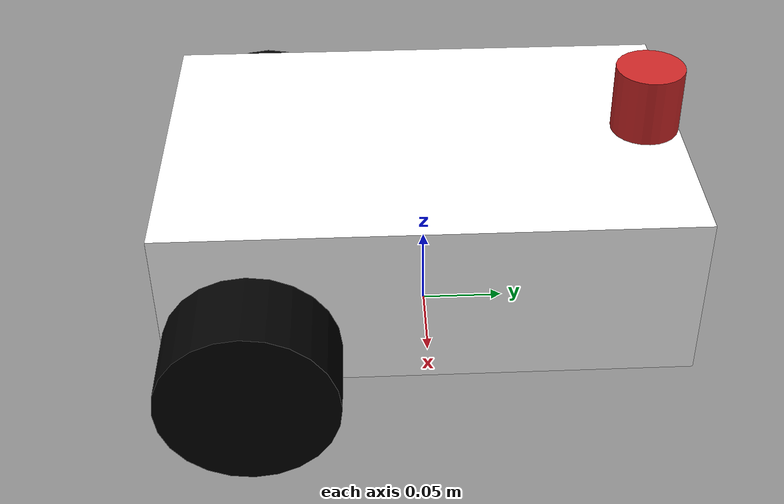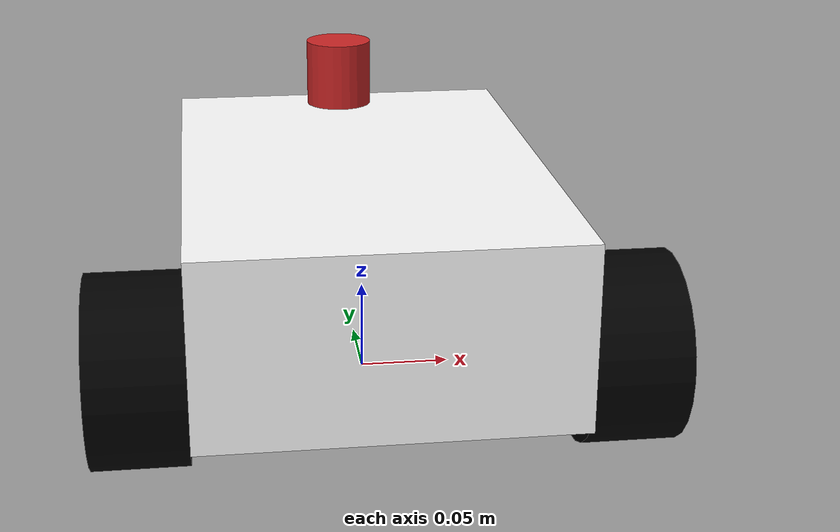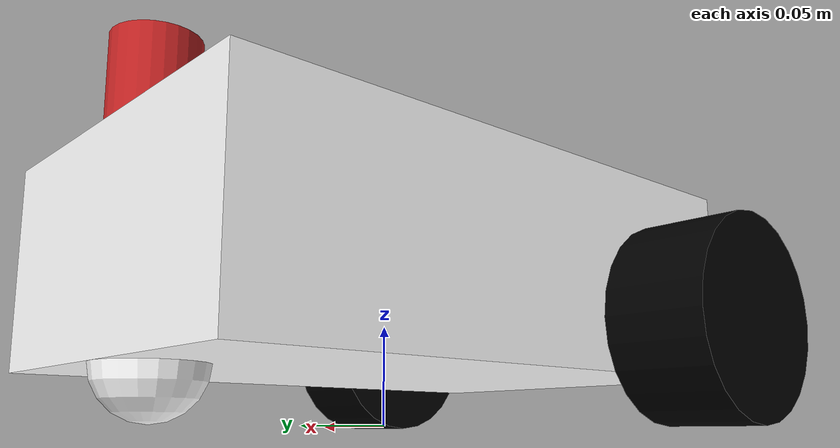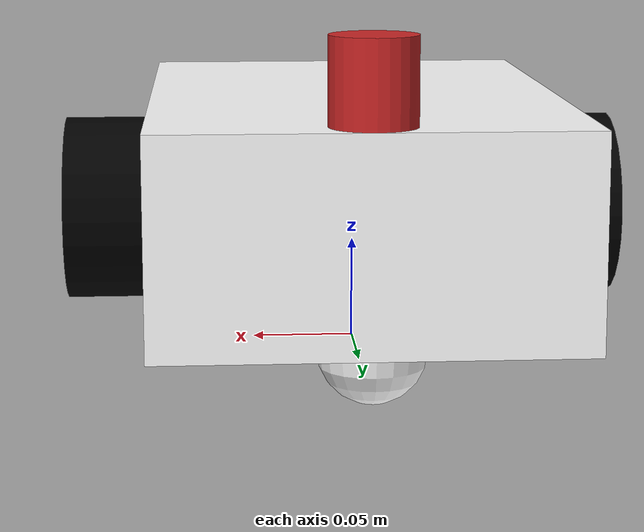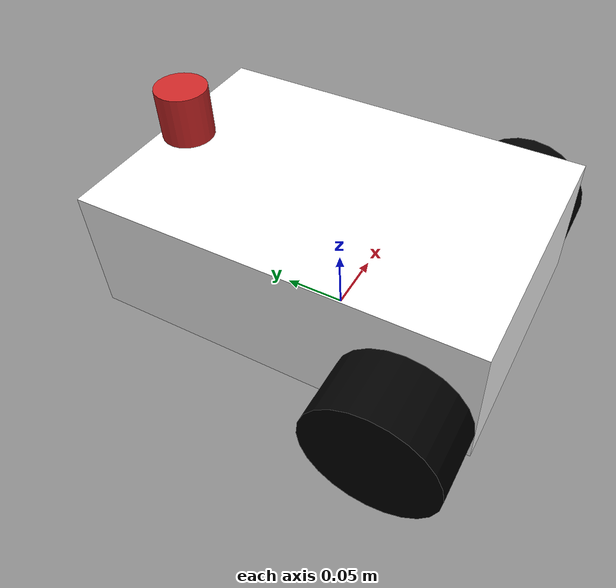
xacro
<robot name="robot2_simulation" xmlns:xacro="http://ros.org/wiki/xacro">
    <xacro:include filename="$(find vis_lecture)/urdf/model_laser_2D.xacro" />

    <material name="black">
        <color rgba="0 0 0 1"/>
    </material>
    <xacro:macro name="wheel" params="child org_xyz">
        <joint name="base_to_${child}" type="continuous">
            <origin xyz="${org_xyz}" rpy="0 ${radians(-90)} 0"/>
            <parent link="body_link"/>
            <child link="${child}"/>
            <axis xyz="0 0 1" />
        </joint>
        <link name="${child}">
            <visual>
                <geometry>
                    <cylinder length="0.05" radius="0.05"/>
                </geometry>
                <origin rpy="0 0 0" xyz="0 0 0"/>
                <material name="black"/>
            </visual>
            <inertial>
                <origin xyz="0 0 0" rpy="0 0 0"/>
                <mass value="0.1"/>
                <inertia ixx="1" ixy="0" ixz="0" iyy="1" iyz="0" izz="1"/>
            </inertial>
            <collision>
                <origin xyz="0 0 0" rpy="0 0 0"/>
                <geometry>
                    <cylinder length="0.048" radius="0.05"/>
                </geometry>
            </collision>
        </link>
        <gazebo reference="${child}">
            <material>Gazebo/black</material>
        </gazebo>
    </xacro:macro>

    <link name="base_link"/>
    <joint name="body1_joint" type="fixed">
        <parent link="base_link"/>
        <child  link="body_link"/>
        <origin rpy="0 0 0" xyz="0 0 0.075"/>
    </joint>
    <link name="body_link">
        <visual>
            <geometry>
                <box size="0.2 0.3 0.1"/>
            </geometry>
            <origin rpy="0 0 0" xyz="0 0 0"/>
            <material name="white">
                <color rgba="1 1 1 1"/>
            </material>
        </visual>
        <inertial>
            <origin xyz="0 0 0" rpy="0 0 0"/>
            <mass value="0.1"/>
            <inertia ixx="1" ixy="0" ixz="0" iyy="1" iyz="0" izz="1"/>
        </inertial>
        <collision>
            <origin xyz="0 0 0" rpy="0 0 0"/>
            <geometry>
                <cylinder length="0.05" radius="0.05"/>
            </geometry>
        </collision>
    </link>
    <gazebo reference="body_link">
        <material>Gazebo/white</material>
    </gazebo>

    <joint name="body_to_ball_joint" type="fixed">
        <origin xyz="0 0.125 -0.05" rpy="0 0 0"/>
        <parent link="body_link"/>
        <child link="ball_link"/>
    </joint>
    <link name="ball_link">
        <visual>
            <origin xyz="0 0 0" rpy="0 0 0"/>
            <geometry>
                <sphere radius="0.025"/>
            </geometry>
            <material name="white">
                <color rgba="1 1 1 1"/>
            </material>
        </visual>
        <inertial>
            <origin xyz="0 0 0" rpy="0 0 0"/>
            <mass value="0.1"/>
            <inertia ixx="1" ixy="0" ixz="0" iyy="1" iyz="0" izz="1"/>
        </inertial>
        <collision>
            <origin xyz="0 0 0" rpy="0 0 0"/>
            <geometry>
                <sphere radius="0.025"/>
            </geometry>
        </collision>
    </link>
    <gazebo reference="ball_name">
        <material>Gazebo/white</material>
    </gazebo>

    <xacro:wheel child="wheel_R" org_xyz="0.125 -0.1 -0.025" />
    <xacro:wheel child="wheel_L" org_xyz="-0.125 -0.1 -0.025" />
    <xacro:model_laser_2D parent="body_link" prefix="laser" xyz="0 0.13 0.07"  />

</robot>

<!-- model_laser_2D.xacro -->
<robot name="model_laser_2D" xmlns:xacro="http://ros.org/wiki/xacro">
    <xacro:macro name="model_laser_2D" params="parent prefix xyz">
        <joint name="${prefix}_joint" type="fixed">
            <parent link="${parent}"/>
            <child  link="${prefix}_link"/>
            <origin xyz="${xyz}" rpy="0 0 ${radians(90)}"/>
        </joint>
        <link name="${prefix}_link">
            <visual>
                <origin xyz="0 0 0" rpy="0 0 0" />
                <geometry>
                    <cylinder radius="0.02" length="0.04" />
                </geometry>
                <material name="red" />
            </visual>
            <collision>
                <origin xyz="0 0 0" rpy="0 0 0"/>
                <geometry>
                    <cylinder radius="0.02" length="0.04" />
                </geometry>
            </collision>
        </link>
        <gazebo reference="${prefix}_link">
            <material>Gazebo/Red</material>
            <sensor type="ray" name="${prefix}">
                <pose>0 0 0 0 0 0</pose>
                <visualize>true</visualize>
                <update_rate>10</update_rate>
                <ray>
                    <scan>
                        <horizontal>
                            <samples>400</samples>
                            <resolution>1</resolution>
                            <min_angle>${radians(-60)}</min_angle>
                            <max_angle>${radians(60)}</max_angle>
                        </horizontal>
                    </scan>
                    <range>
                        <min>0.10</min>
                        <max>20.0</max>
                        <resolution>0.01</resolution>
                    </range>
                    <noise>
                        <type>gaussian</type>
                        <mean>0.0</mean>
                        <stddev>0.01</stddev>
                    </noise>
                </ray>
                <plugin name="gazebo_ros_lidar_controller" filename="libgazebo_ros_laser.so">
                    <topicName>/${prefix}_link/scan</topicName>
                    <frameName>${prefix}_link</frameName>
                </plugin>
            </sensor>
        </gazebo>
    </xacro:macro>
</robot>
